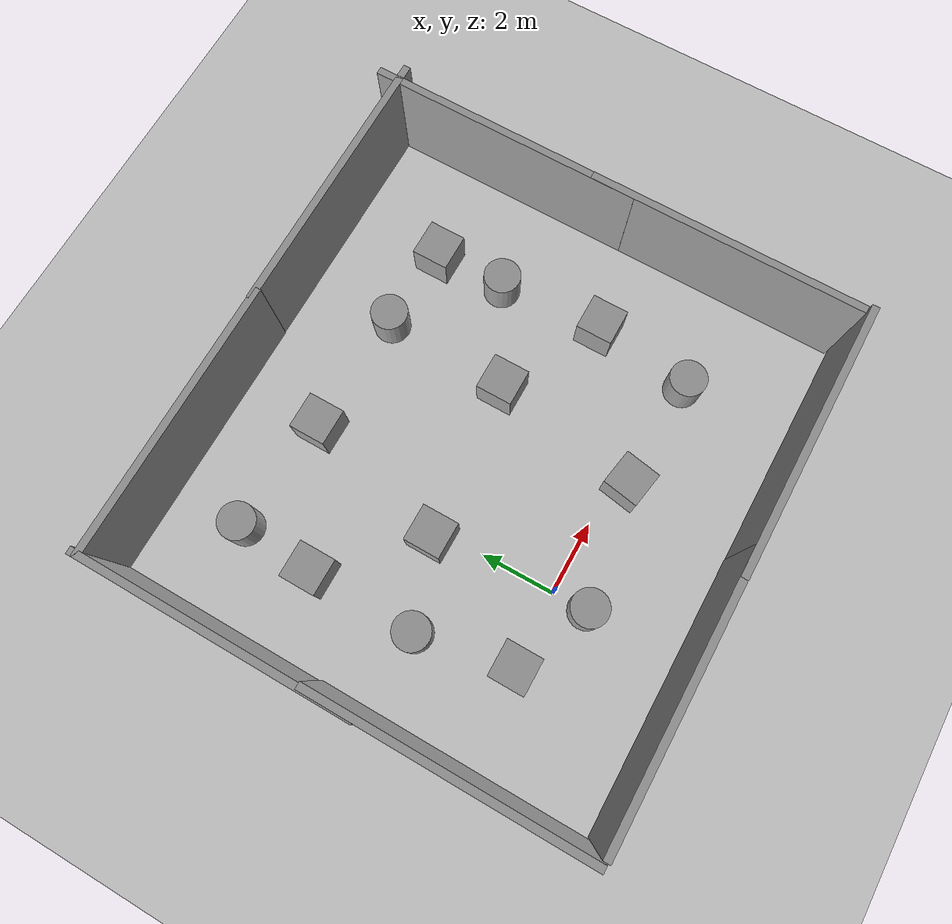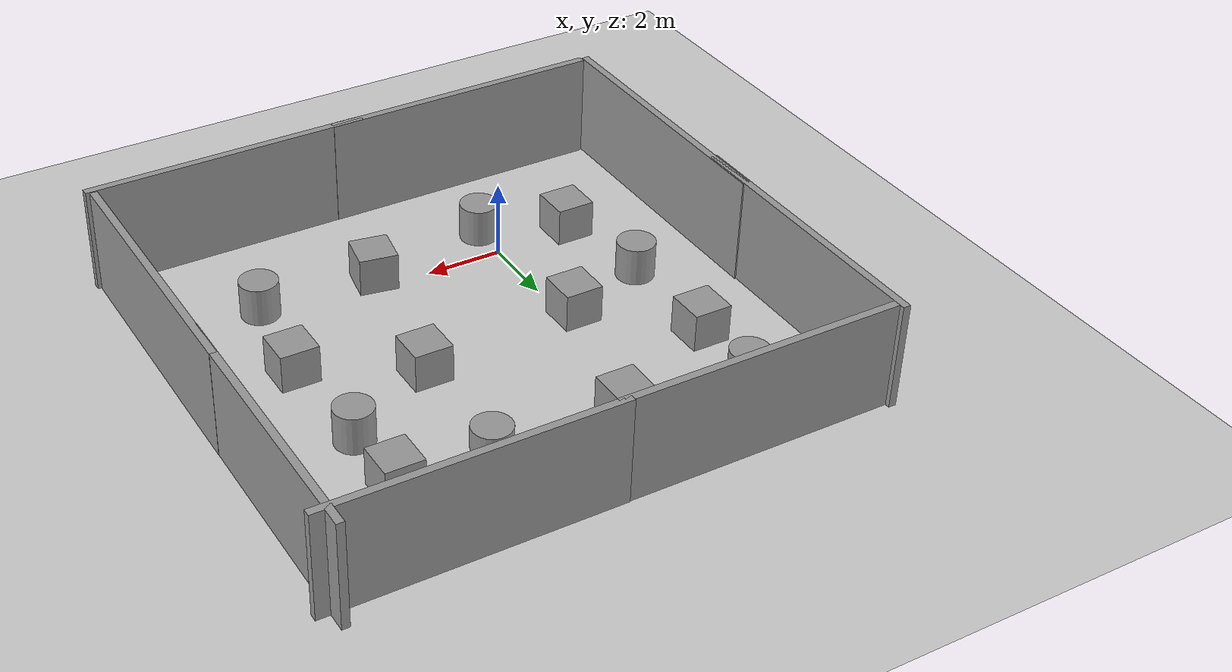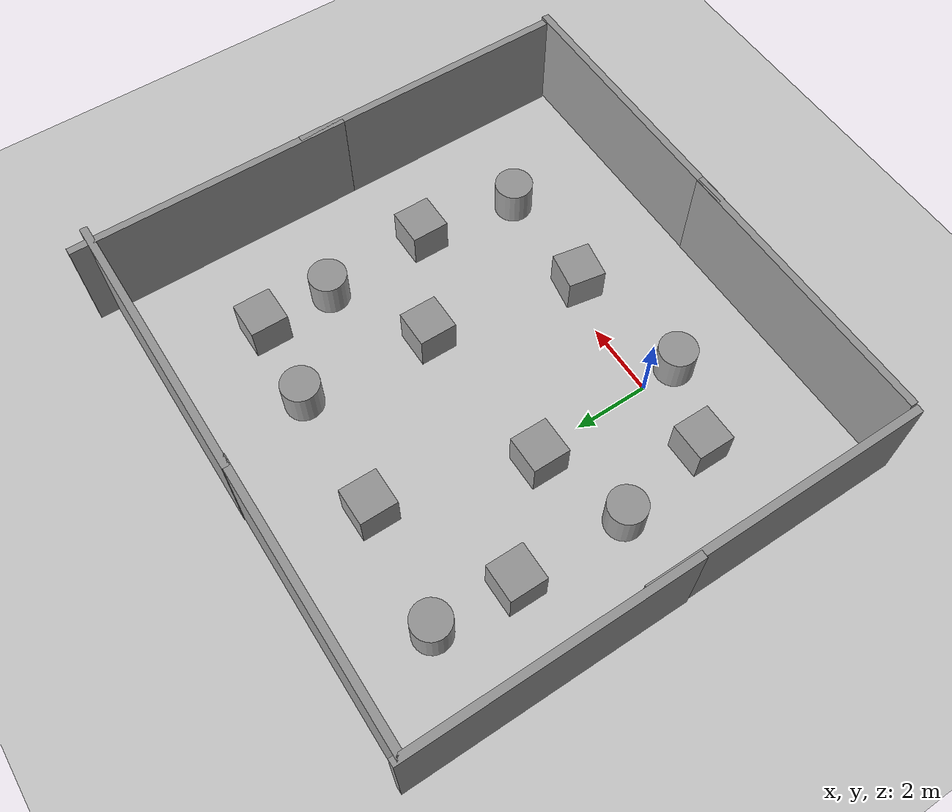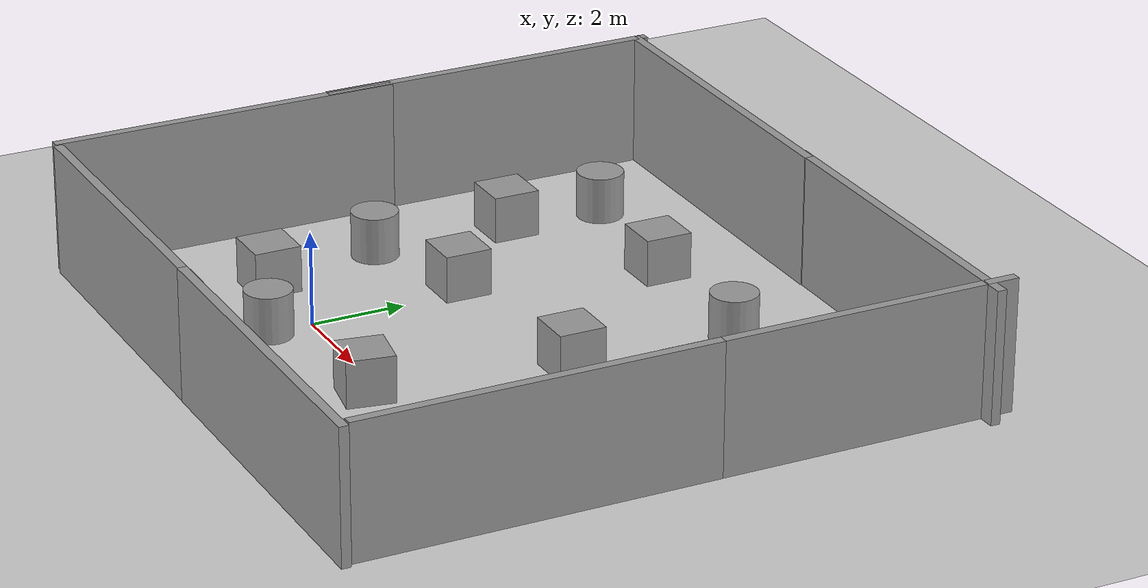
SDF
<sdf version="1.7">
 <world name="default">
  <light name="sun" type="directional">
   <pose>0 0 10 0 -0 0</pose>
   <diffuse>0.8 0.8 0.8 1</diffuse>
   <specular>0.2 0.2 0.2 1</specular>
   <attenuation>
    <range>1000</range>
    <constant>0.9</constant>
    <linear>0.01</linear>
    <quadratic>0.001</quadratic>
   </attenuation>
   <direction>-0.5 0.1 -0.9</direction>
   <spot><inner_angle>0</inner_angle><outer_angle>0</outer_angle><falloff>0</falloff></spot>
  </light>
  <model name="ground_plane">
   <static>1</static>
   <link name="link">
    <collision name="collision">
     <geometry><plane><normal>0 0 1</normal><size>100 100</size></plane></geometry>
     <surface>
      <contact><collide_bitmask>65535</collide_bitmask></contact>
      <friction><ode><mu>100</mu><mu2>50</mu2></ode></friction>
     </surface>
    </collision>
    <visual name="visual">
     <cast_shadows>0</cast_shadows>
     <geometry><plane><normal>0 0 1</normal><size>100 100</size></plane></geometry>
     <material>
      <script><uri>file://media/materials/scripts/gazebo.material</uri><name>Gazebo/Grey</name></script>
     </material>
    </visual>
   </link>
  </model>
  <gravity>0 0 -9.8</gravity>
  <magnetic_field>6e-06 2.3e-05 -4.2e-05</magnetic_field>
  <atmosphere type="adiabatic"/>
  <physics type="ode">
   <max_step_size>0.001</max_step_size>
   <real_time_factor>1</real_time_factor>
   <real_time_update_rate>1000</real_time_update_rate>
  </physics>
  <scene><ambient>0.4 0.4 0.4 1</ambient><background>0.7 0.7 0.7 1</background><shadows>1</shadows></scene>
  <spherical_coordinates>
   <surface_model>EARTH_WGS84</surface_model>
   <latitude_deg>0</latitude_deg>
   <longitude_deg>0</longitude_deg>
   <elevation>0</elevation>
   <heading_deg>0</heading_deg>
  </spherical_coordinates>
  <model name="grey_wall">
   <static>1</static>
   <link name="link">
    <pose>0 0 1.4 0 -0 0</pose>
    <collision name="collision"><geometry><box><size>7.5 0.2 2.8</size></box></geometry></collision>
    <visual name="visual">
     <cast_shadows>0</cast_shadows>
     <geometry><box><size>7.5 0.2 2.8</size></box></geometry>
     <material>
      <script>
       <uri>model://grey_wall/materials/scripts</uri>
       <uri>model://grey_wall/materials/textures</uri>
       <name>vrc/grey_wall</name>
      </script>
     </material>
    </visual>
   </link>
   <pose>-0.848948 -3.52707 0 0 -0 0</pose>
  </model>
  <model name="grey_wall_clone">
   <static>1</static>
   <link name="link">
    <pose>0 0 1.4 0 -0 0</pose>
    <collision name="collision"><geometry><box><size>7.5 0.2 2.8</size></box></geometry></collision>
    <visual name="visual">
     <cast_shadows>0</cast_shadows>
     <geometry><box><size>7.5 0.2 2.8</size></box></geometry>
     <material>
      <script>
       <uri>model://grey_wall/materials/scripts</uri>
       <uri>model://grey_wall/materials/textures</uri>
       <name>vrc/grey_wall</name>
      </script>
     </material>
    </visual>
   </link>
   <pose>-1.10287 9.77249 0 0 -0 0</pose>
  </model>
  <model name="grey_wall_clone_0">
   <static>1</static>
   <link name="link">
    <pose>0 0 1.4 0 -0 0</pose>
    <collision name="collision"><geometry><box><size>7.5 0.2 2.8</size></box></geometry></collision>
    <visual name="visual">
     <cast_shadows>0</cast_shadows>
     <geometry><box><size>7.5 0.2 2.8</size></box></geometry>
     <material>
      <script>
       <uri>model://grey_wall/materials/scripts</uri>
       <uri>model://grey_wall/materials/textures</uri>
       <name>vrc/grey_wall</name>
      </script>
     </material>
    </visual>
   </link>
   <pose>9.38181 0.351243 0 0 0 -1.5705</pose>
  </model>
  <model name="grey_wall_clone_0_clone">
   <static>1</static>
   <link name="link">
    <pose>0 0 1.4 0 -0 0</pose>
    <collision name="collision"><geometry><box><size>7.5 0.2 2.8</size></box></geometry></collision>
    <visual name="visual">
     <cast_shadows>0</cast_shadows>
     <geometry><box><size>7.5 0.2 2.8</size></box></geometry>
     <material>
      <script>
       <uri>model://grey_wall/materials/scripts</uri>
       <uri>model://grey_wall/materials/textures</uri>
       <name>vrc/grey_wall</name>
      </script>
     </material>
    </visual>
   </link>
   <pose>-4.73356 0.182466 0 0 0 -1.5705</pose>
  </model>
  <model name="grey_wall_clone_clone">
   <static>1</static>
   <link name="link">
    <pose>0 0 1.4 0 -0 0</pose>
    <collision name="collision"><geometry><box><size>7.5 0.2 2.8</size></box></geometry></collision>
    <visual name="visual">
     <cast_shadows>0</cast_shadows>
     <geometry><box><size>7.5 0.2 2.8</size></box></geometry>
     <material>
      <script>
       <uri>model://grey_wall/materials/scripts</uri>
       <uri>model://grey_wall/materials/textures</uri>
       <name>vrc/grey_wall</name>
      </script>
     </material>
    </visual>
   </link>
   <pose>6.07443 9.79002 0 0 -0 0</pose>
  </model>
  <model name="grey_wall_clone_clone_clone">
   <static>1</static>
   <link name="link">
    <pose>0 0 1.4 0 -0 0</pose>
    <collision name="collision"><geometry><box><size>7.5 0.2 2.8</size></box></geometry></collision>
    <visual name="visual">
     <cast_shadows>0</cast_shadows>
     <geometry><box><size>7.5 0.2 2.8</size></box></geometry>
     <material>
      <script>
       <uri>model://grey_wall/materials/scripts</uri>
       <uri>model://grey_wall/materials/textures</uri>
       <name>vrc/grey_wall</name>
      </script>
     </material>
    </visual>
   </link>
   <pose>5.82176 -3.53628 0 0 -0 0</pose>
  </model>
  <model name="grey_wall_clone_0_clone_clone">
   <static>1</static>
   <link name="link">
    <pose>0 0 1.4 0 -0 0</pose>
    <collision name="collision"><geometry><box><size>7.5 0.2 2.8</size></box></geometry></collision>
    <visual name="visual">
     <cast_shadows>0</cast_shadows>
     <geometry><box><size>7.5 0.2 2.8</size></box></geometry>
     <material>
      <script>
       <uri>model://grey_wall/materials/scripts</uri>
       <uri>model://grey_wall/materials/textures</uri>
       <name>vrc/grey_wall</name>
      </script>
     </material>
    </visual>
   </link>
   <pose>-4.77369 6.24255 0 0 0 -1.5705</pose>
  </model>
  <model name="grey_wall_clone_0_clone_0">
   <static>1</static>
   <link name="link">
    <pose>0 0 1.4 0 -0 0</pose>
    <collision name="collision"><geometry><box><size>7.5 0.2 2.8</size></box></geometry></collision>
    <visual name="visual">
     <cast_shadows>0</cast_shadows>
     <geometry><box><size>7.5 0.2 2.8</size></box></geometry>
     <material>
      <script>
       <uri>model://grey_wall/materials/scripts</uri>
       <uri>model://grey_wall/materials/textures</uri>
       <name>vrc/grey_wall</name>
      </script>
     </material>
    </visual>
   </link>
   <pose>9.37544 6.6315 0 0 0 -1.5705</pose>
  </model>
  <model name="unit_cylinder">
   <pose>6.44657 -0.459566 0.499998 3e-06 -4e-06 0</pose>
   <link name="link">
    <inertial>
     <mass>1</mass>
     <inertia><ixx>0.145833</ixx><ixy>0</ixy><ixz>0</ixz><iyy>0.145833</iyy><iyz>0</iyz><izz>0.125</izz></inertia>
    </inertial>
    <collision name="collision">
     <geometry><cylinder><radius>0.5</radius><length>1</length></cylinder></geometry>
    </collision>
    <visual name="visual">
     <geometry><cylinder><radius>0.5</radius><length>1</length></cylinder></geometry>
     <material>
      <script><name>Gazebo/Grey</name><uri>file://media/materials/scripts/gazebo.material</uri></script>
     </material>
    </visual>
   </link>
  </model>
  <model name="unit_cylinder_clone_0">
   <pose>0.039591 -0.95228 0.499997 3e-06 4e-06 -0</pose>
   <link name="link">
    <inertial>
     <mass>1</mass>
     <inertia><ixx>0.145833</ixx><ixy>0</ixy><ixz>0</ixz><iyy>0.145833</iyy><iyz>0</iyz><izz>0.125</izz></inertia>
    </inertial>
    <collision name="collision">
     <geometry><cylinder><radius>0.5</radius><length>1</length></cylinder></geometry>
    </collision>
    <visual name="visual">
     <geometry><cylinder><radius>0.5</radius><length>1</length></cylinder></geometry>
     <material>
      <script><name>Gazebo/Grey</name><uri>file://media/materials/scripts/gazebo.material</uri></script>
     </material>
    </visual>
   </link>
  </model>
  <model name="unit_cylinder_clone_2">
   <pose>-2.54772 2.53002 0.499996 4e-06 3e-06 -0</pose>
   <link name="link">
    <inertial>
     <mass>1</mass>
     <inertia><ixx>0.145833</ixx><ixy>0</ixy><ixz>0</ixz><iyy>0.145833</iyy><iyz>0</iyz><izz>0.125</izz></inertia>
    </inertial>
    <collision name="collision">
     <geometry><cylinder><radius>0.5</radius><length>1</length></cylinder></geometry>
    </collision>
    <visual name="visual">
     <geometry><cylinder><radius>0.5</radius><length>1</length></cylinder></geometry>
     <material>
      <script><name>Gazebo/Grey</name><uri>file://media/materials/scripts/gazebo.material</uri></script>
     </material>
    </visual>
   </link>
  </model>
  <model name="unit_cylinder_clone_4">
   <pose>-2.35792 7.65752 0.499992 -3e-06 2e-06 0</pose>
   <link name="link">
    <inertial>
     <mass>1</mass>
     <inertia><ixx>0.145833</ixx><ixy>0</ixy><ixz>0</ixz><iyy>0.145833</iyy><iyz>0</iyz><izz>0.125</izz></inertia>
    </inertial>
    <collision name="collision">
     <geometry><cylinder><radius>0.5</radius><length>1</length></cylinder></geometry>
    </collision>
    <visual name="visual">
     <geometry><cylinder><radius>0.5</radius><length>1</length></cylinder></geometry>
     <material>
      <script><name>Gazebo/Grey</name><uri>file://media/materials/scripts/gazebo.material</uri></script>
     </material>
    </visual>
   </link>
  </model>
  <model name="unit_cylinder_clone_6">
   <pose>4.24586 7.22073 0.499992 -3e-06 2e-06 0</pose>
   <link name="link">
    <inertial>
     <mass>1</mass>
     <inertia><ixx>0.145833</ixx><ixy>0</ixy><ixz>0</ixz><iyy>0.145833</iyy><iyz>0</iyz><izz>0.125</izz></inertia>
    </inertial>
    <collision name="collision">
     <geometry><cylinder><radius>0.5</radius><length>1</length></cylinder></geometry>
    </collision>
    <visual name="visual">
     <geometry><cylinder><radius>0.5</radius><length>1</length></cylinder></geometry>
     <material>
      <script><name>Gazebo/Grey</name><uri>file://media/materials/scripts/gazebo.material</uri></script>
     </material>
    </visual>
   </link>
  </model>
  <model name="unit_cylinder_clone_8">
   <pose>6.60964 5.12717 0.499993 -3e-06 2e-06 0</pose>
   <link name="link">
    <inertial>
     <mass>1</mass>
     <inertia><ixx>0.145833</ixx><ixy>0</ixy><ixz>0</ixz><iyy>0.145833</iyy><iyz>0</iyz><izz>0.125</izz></inertia>
    </inertial>
    <collision name="collision">
     <geometry><cylinder><radius>0.5</radius><length>1</length></cylinder></geometry>
    </collision>
    <visual name="visual">
     <geometry><cylinder><radius>0.5</radius><length>1</length></cylinder></geometry>
     <material>
      <script><name>Gazebo/Grey</name><uri>file://media/materials/scripts/gazebo.material</uri></script>
     </material>
    </visual>
   </link>
  </model>
  <model name="unit_box">
   <pose>3.37462 -0.373152 0.500002 0 4e-06 -0.171044</pose>
   <link name="link">
    <inertial>
     <mass>1</mass>
     <inertia>
      <ixx>0.166667</ixx>
      <ixy>0</ixy>
      <ixz>0</ixz>
      <iyy>0.166667</iyy>
      <iyz>0</iyz>
      <izz>0.166667</izz>
     </inertia>
    </inertial>
    <collision name="collision"><geometry><box><size>1 1 1</size></box></geometry></collision>
    <visual name="visual">
     <geometry><box><size>1 1 1</size></box></geometry>
     <material>
      <script><name>Gazebo/Grey</name><uri>file://media/materials/scripts/gazebo.material</uri></script>
     </material>
    </visual>
   </link>
  </model>
  <model name="unit_box_0">
   <pose>-2.06038 -0.048525 0.499995 0 -1e-05 0</pose>
   <link name="link">
    <inertial>
     <mass>1</mass>
     <inertia>
      <ixx>0.166667</ixx>
      <ixy>0</ixy>
      <ixz>0</ixz>
      <iyy>0.166667</iyy>
      <iyz>0</iyz>
      <izz>0.166667</izz>
     </inertia>
    </inertial>
    <collision name="collision"><geometry><box><size>1 1 1</size></box></geometry></collision>
    <visual name="visual">
     <geometry><box><size>1 1 1</size></box></geometry>
     <material>
      <script><name>Gazebo/Grey</name><uri>file://media/materials/scripts/gazebo.material</uri></script>
     </material>
    </visual>
   </link>
  </model>
  <model name="unit_box_1">
   <pose>-2.48498 5.51966 0.499995 -1e-05 -0 -0</pose>
   <link name="link">
    <inertial>
     <mass>1</mass>
     <inertia>
      <ixx>0.166667</ixx>
      <ixy>0</ixy>
      <ixz>0</ixz>
      <iyy>0.166667</iyy>
      <iyz>0</iyz>
      <izz>0.166667</izz>
     </inertia>
    </inertial>
    <collision name="collision"><geometry><box><size>1 1 1</size></box></geometry></collision>
    <visual name="visual">
     <geometry><box><size>1 1 1</size></box></geometry>
     <material>
      <script><name>Gazebo/Grey</name><uri>file://media/materials/scripts/gazebo.material</uri></script>
     </material>
    </visual>
   </link>
  </model>
  <model name="unit_box_2">
   <pose>0.838529 7.33144 0.499995 0 1e-05 0</pose>
   <link name="link">
    <inertial>
     <mass>1</mass>
     <inertia>
      <ixx>0.166667</ixx>
      <ixy>0</ixy>
      <ixz>0</ixz>
      <iyy>0.166667</iyy>
      <iyz>0</iyz>
      <izz>0.166667</izz>
     </inertia>
    </inertial>
    <collision name="collision"><geometry><box><size>1 1 1</size></box></geometry></collision>
    <visual name="visual">
     <geometry><box><size>1 1 1</size></box></geometry>
     <material>
      <script><name>Gazebo/Grey</name><uri>file://media/materials/scripts/gazebo.material</uri></script>
     </material>
    </visual>
   </link>
  </model>
  <model name="unit_box_3">
   <pose>6.5579 7.05659 0.499995 1e-05 -0 0</pose>
   <link name="link">
    <inertial>
     <mass>1</mass>
     <inertia>
      <ixx>0.166667</ixx>
      <ixy>0</ixy>
      <ixz>0</ixz>
      <iyy>0.166667</iyy>
      <iyz>0</iyz>
      <izz>0.166667</izz>
     </inertia>
    </inertial>
    <collision name="collision"><geometry><box><size>1 1 1</size></box></geometry></collision>
    <visual name="visual">
     <geometry><box><size>1 1 1</size></box></geometry>
     <material>
      <script><name>Gazebo/Grey</name><uri>file://media/materials/scripts/gazebo.material</uri></script>
     </material>
    </visual>
   </link>
  </model>
  <model name="unit_box_4">
   <pose>6.80386 2.23325 0.499995 0 -1e-05 0</pose>
   <link name="link">
    <inertial>
     <mass>1</mass>
     <inertia>
      <ixx>0.166667</ixx>
      <ixy>0</ixy>
      <ixz>0</ixz>
      <iyy>0.166667</iyy>
      <iyz>0</iyz>
      <izz>0.166667</izz>
     </inertia>
    </inertial>
    <collision name="collision"><geometry><box><size>1 1 1</size></box></geometry></collision>
    <visual name="visual">
     <geometry><box><size>1 1 1</size></box></geometry>
     <material>
      <script><name>Gazebo/Grey</name><uri>file://media/materials/scripts/gazebo.material</uri></script>
     </material>
    </visual>
   </link>
  </model>
  <model name="unit_box_5">
   <pose>4.08054 3.71204 0.499995 -1e-05 -0 -0</pose>
   <link name="link">
    <inertial>
     <mass>1</mass>
     <inertia>
      <ixx>0.166667</ixx>
      <ixy>0</ixy>
      <ixz>0</ixz>
      <iyy>0.166667</iyy>
      <iyz>0</iyz>
      <izz>0.166667</izz>
     </inertia>
    </inertial>
    <collision name="collision"><geometry><box><size>1 1 1</size></box></geometry></collision>
    <visual name="visual">
     <geometry><box><size>1 1 1</size></box></geometry>
     <material>
      <script><name>Gazebo/Grey</name><uri>file://media/materials/scripts/gazebo.material</uri></script>
     </material>
    </visual>
   </link>
  </model>
  <model name="unit_box_6">
   <pose>-0.234772 3.33705 0.499995 0 1e-05 0</pose>
   <link name="link">
    <inertial>
     <mass>1</mass>
     <inertia>
      <ixx>0.166667</ixx>
      <ixy>0</ixy>
      <ixz>0</ixz>
      <iyy>0.166667</iyy>
      <iyz>0</iyz>
      <izz>0.166667</izz>
     </inertia>
    </inertial>
    <collision name="collision"><geometry><box><size>1 1 1</size></box></geometry></collision>
    <visual name="visual">
     <geometry><box><size>1 1 1</size></box></geometry>
     <material>
      <script><name>Gazebo/Grey</name><uri>file://media/materials/scripts/gazebo.material</uri></script>
     </material>
    </visual>
   </link>
  </model>
 </world>
</sdf>
